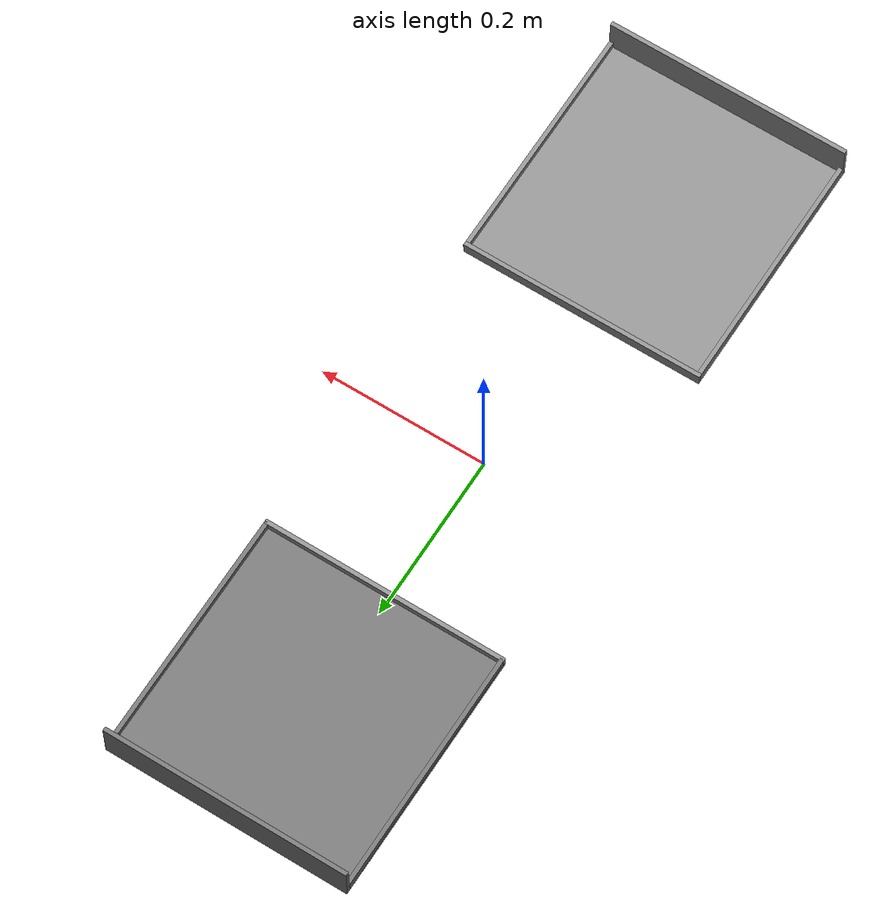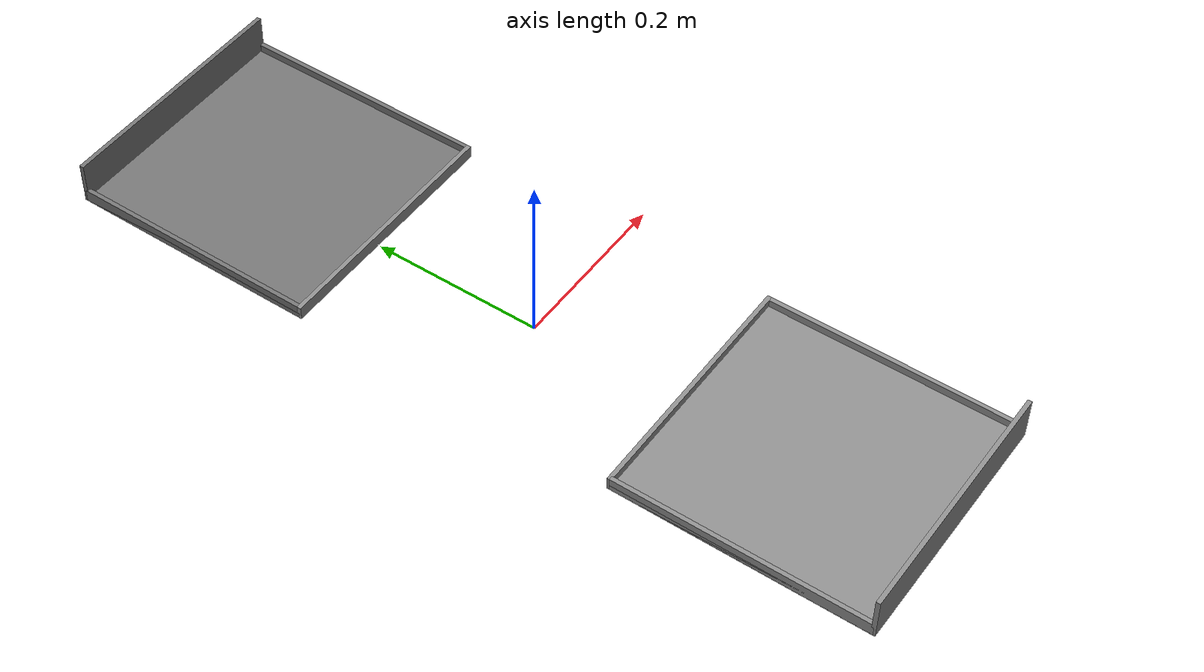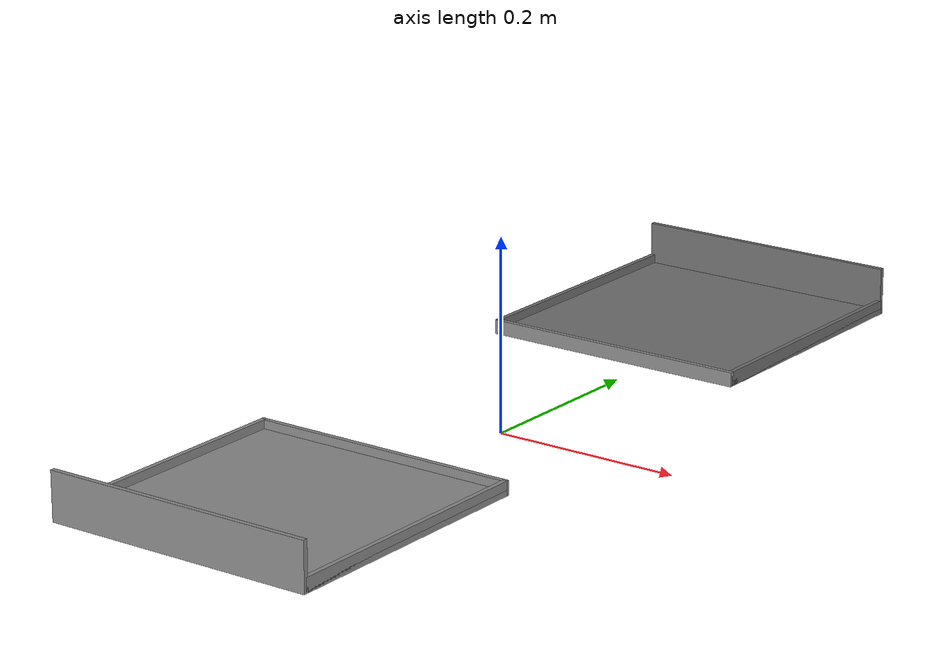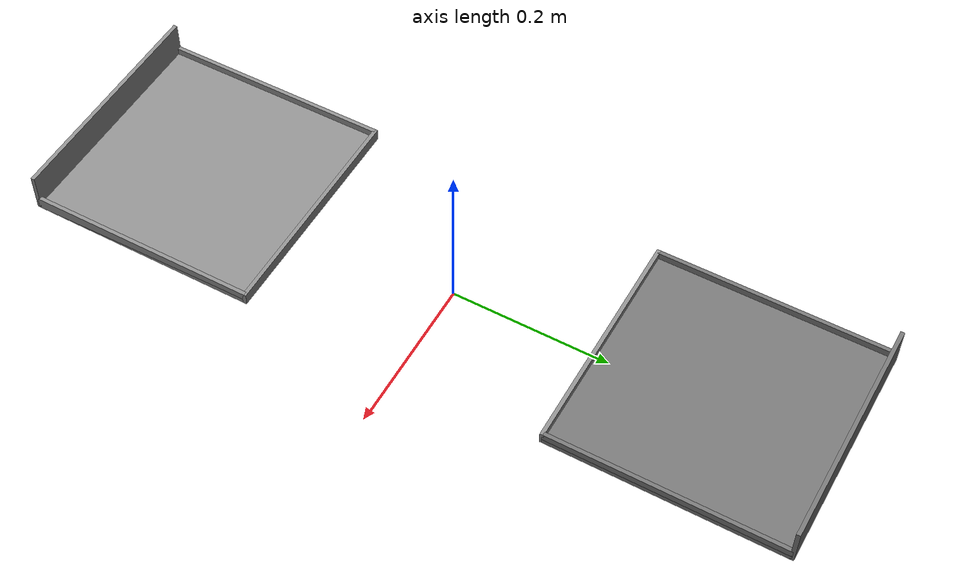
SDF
<?xml version="1.0"?>
<sdf version="1.7">
  <world name="table_grid">
    <gui>
      <camera name="user_camera">
        <pose>0.75 0 0.55 0 0.588 3.1416</pose>
      </camera>
    </gui>
    <include><uri>model://sun</uri></include>
    <scene>
      <ambient>0.8 0.8 0.8 1</ambient>
      <background>0.25 0.25 0.25 1</background>
    </scene>

    <!-- /gazebo/model_states、get/set_entity_state：物体复位与位姿校验依赖 -->
    <plugin name="gazebo_ros_state" filename="/opt/ros/humble/lib/libgazebo_ros_state.so">
      <ros><namespace>/gazebo</namespace></ros>
      <update_rate>20</update_rate>
    </plugin>

    <physics name="default" type="ode">
      <real_time_update_rate>2500</real_time_update_rate>
      <max_step_size>0.001</max_step_size>
      <real_time_factor>1.0</real_time_factor>
      <ode>
        <solver><type>quick</type><iters>200</iters><sor>1.0</sor></solver>
        <constraints><tolerance>0.001</tolerance></constraints>
      </ode>
    </physics>

  <model name="desk_layout">
    <static>true</static>
    <pose frame="">0 0 0 0 0 0</pose>
    <!-- 6 取物网格: 0.09x0.09 薄板, 面向圆心 -->
    <link name="cell_1">
      <pose frame=""> 0.2250  0.0000 0.0270 0 0  0.0000</pose>
      <collision name="cell_1_col">
        <geometry><box><size>0.09 0.09 0.004</size></box></geometry>
        <surface><friction><ode><mu>1.0</mu><mu2>1.0</mu2></ode><torsional><coefficient>0.5</coefficient><patch_radius>0.005</patch_radius><use_patch_radius>1</use_patch_radius></torsional></friction></surface>
      </collision>
    </link>
    <link name="cell_2">
      <pose frame=""> 0.1591  0.1591 0.0270 0 0  0.7854</pose>
      <collision name="cell_2_col">
        <geometry><box><size>0.09 0.09 0.004</size></box></geometry>
        <surface><friction><ode><mu>1.0</mu><mu2>1.0</mu2></ode><torsional><coefficient>0.5</coefficient><patch_radius>0.005</patch_radius><use_patch_radius>1</use_patch_radius></torsional></friction></surface>
      </collision>
    </link>
    <link name="cell_3">
      <pose frame=""> 0.1591 -0.1591 0.0270 0 0 -0.7854</pose>
      <collision name="cell_3_col">
        <geometry><box><size>0.09 0.09 0.004</size></box></geometry>
        <surface><friction><ode><mu>1.0</mu><mu2>1.0</mu2></ode><torsional><coefficient>0.5</coefficient><patch_radius>0.005</patch_radius><use_patch_radius>1</use_patch_radius></torsional></friction></surface>
      </collision>
    </link>
    <link name="cell_4">
      <pose frame="">-0.2250  0.0000 0.0270 0 0 3.1416</pose>
      <collision name="cell_4_col">
        <geometry><box><size>0.09 0.09 0.004</size></box></geometry>
        <surface><friction><ode><mu>1.0</mu><mu2>1.0</mu2></ode><torsional><coefficient>0.5</coefficient><patch_radius>0.005</patch_radius><use_patch_radius>1</use_patch_radius></torsional></friction></surface>
      </collision>
    </link>
    <link name="cell_5">
      <pose frame="">-0.1591  0.1591 0.0270 0 0 2.3562</pose>
      <collision name="cell_5_col">
        <geometry><box><size>0.09 0.09 0.004</size></box></geometry>
        <surface><friction><ode><mu>1.0</mu><mu2>1.0</mu2></ode><torsional><coefficient>0.5</coefficient><patch_radius>0.005</patch_radius><use_patch_radius>1</use_patch_radius></torsional></friction></surface>
      </collision>
    </link>
    <link name="cell_6">
      <pose frame="">-0.1591 -0.1591 0.0270 0 0 -2.3562</pose>
      <collision name="cell_6_col">
        <geometry><box><size>0.09 0.09 0.004</size></box></geometry>
        <surface><friction><ode><mu>1.0</mu><mu2>1.0</mu2></ode><torsional><coefficient>0.5</coefficient><patch_radius>0.005</patch_radius><use_patch_radius>1</use_patch_radius></torsional></friction></surface>
      </collision>
    </link>
    <link name="bin_0_base">
      <pose frame="">0.0000 0.3350 0.0280 0 0 0.0000</pose>
      <collision name="bin_0_base_col">
        <geometry><box><size>0.29 0.29 0.006</size></box></geometry><surface><friction><ode><mu>1.0</mu><mu2>1.0</mu2></ode><torsional><coefficient>0.5</coefficient><patch_radius>0.005</patch_radius><use_patch_radius>1</use_patch_radius></torsional></friction></surface></collision>
      <visual name="bin_0_base_vis">
        <geometry><box><size>0.29 0.29 0.006</size></box></geometry>
        <material><ambient>0.45 0.45 0.45 1</ambient><diffuse>0.45 0.45 0.45 1</diffuse></material>
      </visual>
    </link>
    <link name="bin_0_wall_far">
      <pose frame="">0.0000 0.4800 0.0500 0 0 0.0000</pose>
      <collision name="bin_0_wall_far_col">
        <geometry><box><size>0.29 0.005 0.05</size></box></geometry>
      </collision>
      <visual name="bin_0_wall_far_vis">
        <geometry><box><size>0.29 0.005 0.05</size></box></geometry>
        <material><ambient>0.45 0.45 0.45 1</ambient><diffuse>0.45 0.45 0.45 1</diffuse></material>
      </visual>
    </link>
    <link name="bin_0_wall_xa">
      <pose frame="">0.1425 0.3350 0.0325 0 0 0.0000</pose>
      <collision name="bin_0_wall_xa_col">
        <geometry><box><size>0.005 0.29 0.015</size></box></geometry>
      </collision>
      <visual name="bin_0_wall_xa_vis">
        <geometry><box><size>0.005 0.29 0.015</size></box></geometry>
        <material><ambient>0.45 0.45 0.45 1</ambient><diffuse>0.45 0.45 0.45 1</diffuse></material>
      </visual>
    </link>
    <link name="bin_0_wall_xb">
      <pose frame="">-0.1425 0.3350 0.0325 0 0 0.0000</pose>
      <collision name="bin_0_wall_xb_col">
        <geometry><box><size>0.005 0.29 0.015</size></box></geometry>
      </collision>
      <visual name="bin_0_wall_xb_vis">
        <geometry><box><size>0.005 0.29 0.015</size></box></geometry>
        <material><ambient>0.45 0.45 0.45 1</ambient><diffuse>0.45 0.45 0.45 1</diffuse></material>
      </visual>
    </link>
    <link name="bin_0_wall_near">
      <pose frame="">0.0000 0.1900 0.0325 0 0 0.0000</pose>
      <collision name="bin_0_wall_near_col">
        <geometry><box><size>0.29 0.005 0.015</size></box></geometry>
      </collision>
      <visual name="bin_0_wall_near_vis">
        <geometry><box><size>0.29 0.005 0.015</size></box></geometry>
        <material><ambient>0.55 0.55 0.55 1</ambient><diffuse>0.55 0.55 0.55 1</diffuse></material>
      </visual>
    </link>
    <!-- bin_1 球盒(正右, r=0.24): 与 bin_0 镜像, 底板 0.29x0.29 正方, 内净 0.28x0.285。理由同 bin_0 -->
    <link name="bin_1_base">
      <pose frame="">0.0000 -0.3350 0.0280 0 0 0.0000</pose>
      <collision name="bin_1_base_col">
        <geometry><box><size>0.29 0.29 0.006</size></box></geometry><surface><friction><ode><mu>1.0</mu><mu2>1.0</mu2></ode><torsional><coefficient>0.5</coefficient><patch_radius>0.005</patch_radius><use_patch_radius>1</use_patch_radius></torsional></friction></surface></collision>
      <visual name="bin_1_base_vis">
        <geometry><box><size>0.29 0.29 0.006</size></box></geometry>
        <material><ambient>0.55 0.55 0.55 1</ambient><diffuse>0.55 0.55 0.55 1</diffuse></material>
      </visual>
    </link>
    <link name="bin_1_wall_far">
      <pose frame="">0.0000 -0.4800 0.0500 0 0 0.0000</pose>
      <collision name="bin_1_wall_far_col">
        <geometry><box><size>0.29 0.005 0.05</size></box></geometry>
      </collision>
      <visual name="bin_1_wall_far_vis">
        <geometry><box><size>0.29 0.005 0.05</size></box></geometry>
        <material><ambient>0.55 0.55 0.55 1</ambient><diffuse>0.55 0.55 0.55 1</diffuse></material>
      </visual>
    </link>
    <link name="bin_1_wall_xa">
      <pose frame="">0.1425 -0.3350 0.0325 0 0 0.0000</pose>
      <collision name="bin_1_wall_xa_col">
        <geometry><box><size>0.005 0.29 0.015</size></box></geometry>
      </collision>
      <visual name="bin_1_wall_xa_vis">
        <geometry><box><size>0.005 0.29 0.015</size></box></geometry>
        <material><ambient>0.55 0.55 0.55 1</ambient><diffuse>0.55 0.55 0.55 1</diffuse></material>
      </visual>
    </link>
    <link name="bin_1_wall_xb">
      <pose frame="">-0.1425 -0.3350 0.0325 0 0 0.0000</pose>
      <collision name="bin_1_wall_xb_col">
        <geometry><box><size>0.005 0.29 0.015</size></box></geometry>
      </collision>
      <visual name="bin_1_wall_xb_vis">
        <geometry><box><size>0.005 0.29 0.015</size></box></geometry>
        <material><ambient>0.55 0.55 0.55 1</ambient><diffuse>0.55 0.55 0.55 1</diffuse></material>
      </visual>
    </link>
    <link name="bin_1_wall_near">
      <pose frame="">0.0000 -0.1900 0.0325 0 0 0.0000</pose>
      <collision name="bin_1_wall_near_col">
        <geometry><box><size>0.29 0.005 0.015</size></box></geometry>
      </collision>
      <visual name="bin_1_wall_near_vis">
        <geometry><box><size>0.29 0.005 0.015</size></box></geometry>
        <material><ambient>0.55 0.55 0.55 1</ambient><diffuse>0.55 0.55 0.55 1</diffuse></material>
      </visual>
    </link>
  </model>

  <!-- 观众相机: 正前斜俯视取景(替代 gzclient 录屏, 避免 GUI 渲染拖垮 RTF) -->
  <model name="audience_cam">
    <static>true</static>
    <pose frame="">0.75 0 0.55 0 0.588 3.1416</pose>
    <link name="audience_cam_link">
      <sensor name="audience_cam_sensor" type="camera">
        <pose frame="">0 0 0 0 0 0</pose>
        <camera>
          <horizontal_fov>1.05</horizontal_fov>
          <image><width>768</width><height>432</height></image>
          <clip><near>0.05</near><far>10.0</far></clip>
        </camera>
        <always_on>true</always_on>
        <update_rate>10</update_rate>
        <visualize>false</visualize>
        <plugin name="audience_cam_controller" filename="libgazebo_ros_camera.so">
          <ros><namespace>/</namespace></ros>
          <camera_name>audience_cam</camera_name>
          <frame_name>audience_cam_optical_frame</frame_name>
        </plugin>
      </sensor>
    </link>
  </model>

  <model name="top_camera">
    <static>true</static>
    <pose frame="">0 0 1.0 0 1.5708 0</pose>
    <link name="top_camera_link">
      <sensor name="top_camera_sensor" type="camera">
        <pose frame="">0 0 0 0 0 0</pose>
        <camera>
          <horizontal_fov>0.95</horizontal_fov>
          <image><width>800</width><height>640</height></image>
          <clip><near>0.05</near><far>10.0</far></clip>
        </camera>
        <always_on>true</always_on>
        <update_rate>30</update_rate>
        <visualize>false</visualize>
        <plugin name="top_camera_controller" filename="libgazebo_ros_camera.so">
          <!-- 实测：插件默认把 model 名当命名空间，camera_name 再拼一层，
               会得到 /top_camera/top_camera/image_raw。
               显式把命名空间压到根，camera_name 就是唯一前缀。 -->
          <ros><namespace>/</namespace></ros>
          <camera_name>top_camera</camera_name>
          <frame_name>top_camera_optical_frame</frame_name>
        </plugin>
      </sensor>
    </link>
  </model>

  </world>
</sdf>
